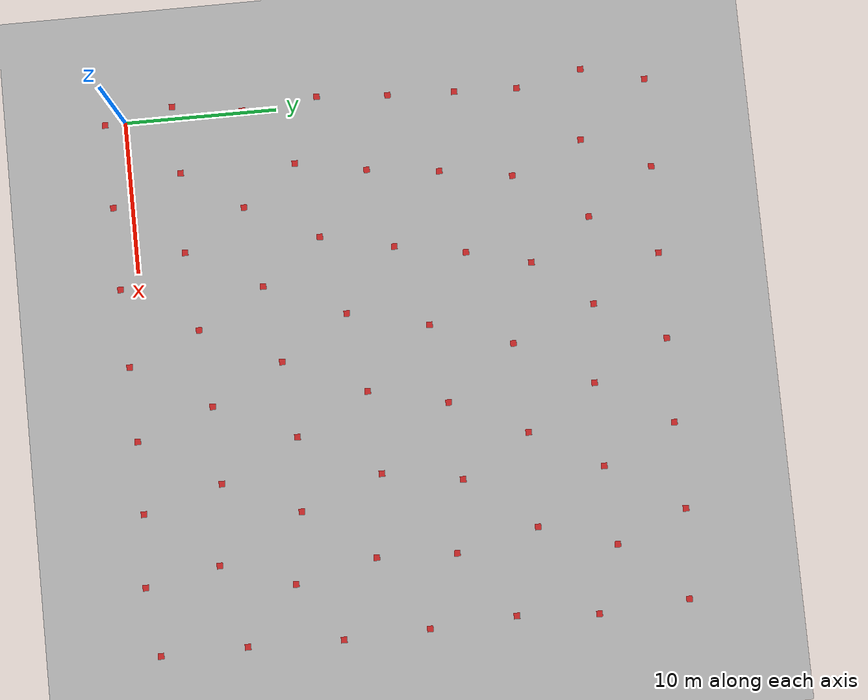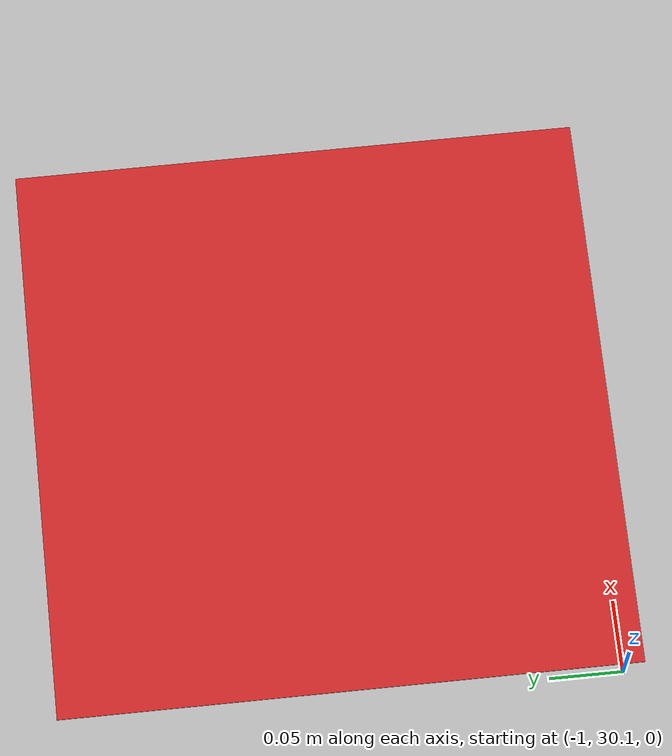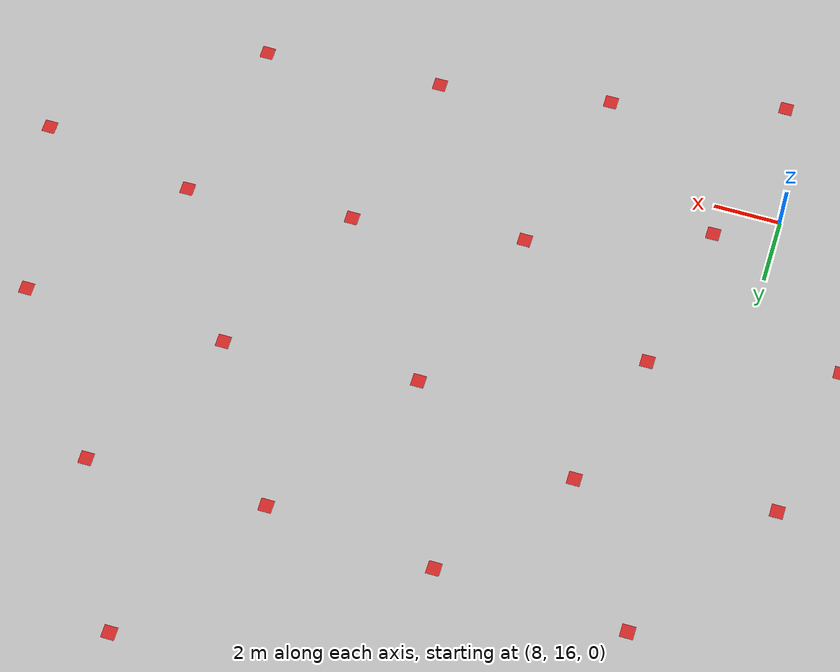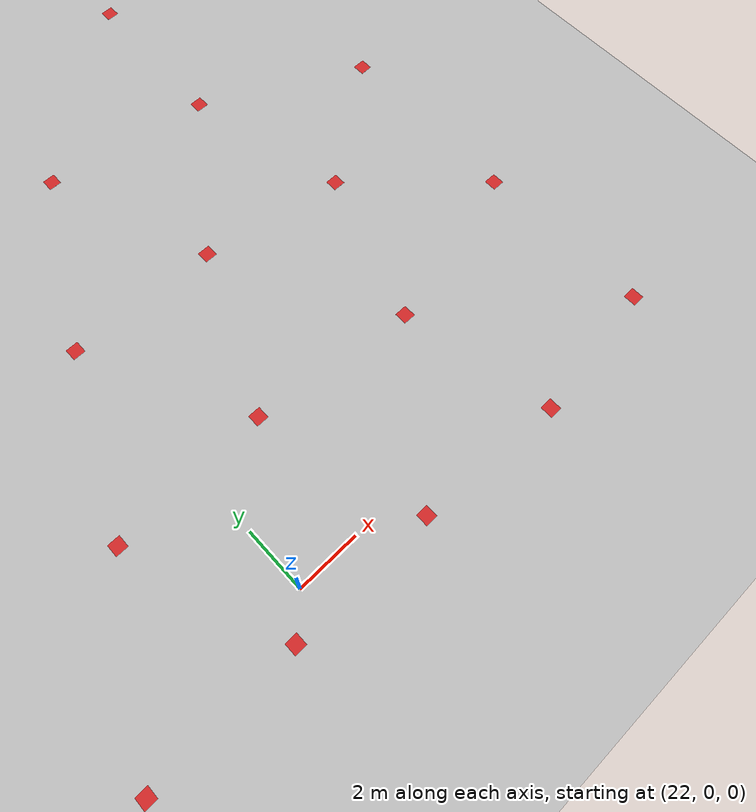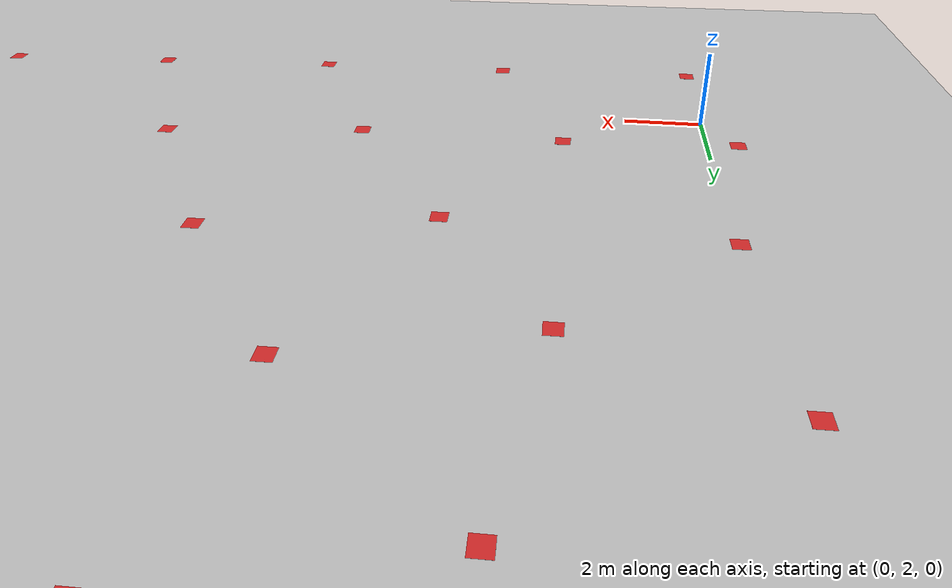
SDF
<sdf version="1.7">
 <world name="default">
  <light name="sun" type="directional">
   <pose>0 0 10 0 -0 0</pose>
   <diffuse>0.8 0.8 0.8 1</diffuse>
   <specular>0.2 0.2 0.2 1</specular>
   <attenuation>
    <range>1000</range>
    <constant>0.9</constant>
    <linear>0.01</linear>
    <quadratic>0.001</quadratic>
   </attenuation>
   <direction>-0.5 0.1 -0.9</direction>
   <spot><inner_angle>0</inner_angle><outer_angle>0</outer_angle><falloff>0</falloff></spot>
  </light>
  <model name="parquet_plane">
   <static>1</static>
   <link name="link">
    <collision name="collision"><geometry><box><size>200 200 0.02</size></box></geometry></collision>
    <visual name="visual">
     <cast_shadows>0</cast_shadows>
     <geometry><box><size>200 200 0.02</size></box></geometry>
     <material>
      <script>
       <uri>model://parquet_plane/materials/scripts</uri>
       <uri>model://parquet_plane/materials/textures</uri>
       <name>parquet</name>
      </script>
     </material>
    </visual>
   </link>
   <pose>0 0 -0.01 0 -0 0</pose>
  </model>
  <model name="camera">
   <static>1</static>
   <link name="camera_link">
    <sensor name="camera" type="camera">
     <camera>
      <horizontal_fov>1.8</horizontal_fov>
      <image><format>B8G8R8</format><width>640</width><height>480</height></image>
      <clip><near>0.02</near><far>300</far></clip>
     </camera>
     <always_on>1</always_on>
     <update_rate>30</update_rate>
     <visualize>1</visualize>
     <plugin name="camera_plugin" filename="libgazebo_ros_camera.so">
      <alwaysOn>1</alwaysOn>
      <imageTopicName>image_raw</imageTopicName>
      <cameraTopicName>camera_info</cameraTopicName>
      <cameraName>camera</cameraName>
      <frameName>/camera</frameName>
     </plugin>
    </sensor>
   </link>
   <pose>-1.12869 1.04423 3 0 0.550001 0.35</pose>
  </model>
  <scene>
   <ambient>0.8 0.8 0.8 1</ambient>
   <background>0.8 0.9 1 1</background>
   <shadows>0</shadows>
   <grid>0</grid>
   <origin_visual>0</origin_visual>
  </scene>
  <physics name="default_physics" default="0" type="ode">
   <max_step_size>0.001</max_step_size>
   <real_time_factor>1</real_time_factor>
   <real_time_update_rate>1000</real_time_update_rate>
  </physics>
  <gravity>0 0 -9.8</gravity>
  <magnetic_field>6e-06 2.3e-05 -4.2e-05</magnetic_field>
  <atmosphere type="adiabatic"/>
  <spherical_coordinates>
   <surface_model>EARTH_WGS84</surface_model>
   <latitude_deg>0</latitude_deg>
   <longitude_deg>0</longitude_deg>
   <elevation>0</elevation>
   <heading_deg>0</heading_deg>
  </spherical_coordinates>
  <model name="red_circle_clone_0">
   <pose>17.5068 34.091 0 0 -0 0</pose>
   <frame name="red_circle::__model__" attached_to="red_circle::red_circle_link">
    <pose relative_to="__model__">0 0 0 0 -0 0</pose>
   </frame>
   <static>1</static>
   <link name="red_circle::red_circle_link">
    <pose relative_to="red_circle::__model__">0 0 0.001 0 -0 0</pose>
    <visual name="red_circle_texture">
     <cast_shadows>0</cast_shadows>
     <geometry><box><size>0.4 0.4 0.001</size></box></geometry>
     <material>
      <script>
       <uri>model://red_circle/materials/scripts</uri>
       <uri>model://red_circle/materials/textures</uri>
       <name>red_circle</name>
      </script>
     </material>
    </visual>
   </link>
  </model>
  <model name="red_circle_clone_1">
   <pose>6.10911 34.2733 0 0 -0 0</pose>
   <frame name="red_circle::__model__" attached_to="red_circle::red_circle_link">
    <pose relative_to="__model__">0 0 0 0 -0 0</pose>
   </frame>
   <static>1</static>
   <link name="red_circle::red_circle_link">
    <pose relative_to="red_circle::__model__">0 0 0.001 0 -0 0</pose>
    <visual name="red_circle_texture">
     <cast_shadows>0</cast_shadows>
     <geometry><box><size>0.4 0.4 0.001</size></box></geometry>
     <material>
      <script>
       <uri>model://red_circle/materials/scripts</uri>
       <uri>model://red_circle/materials/textures</uri>
       <name>red_circle</name>
      </script>
     </material>
    </visual>
   </link>
  </model>
  <model name="red_circle_clone_2">
   <pose>0.254034 34.4378 0 0 -0 0</pose>
   <frame name="red_circle::__model__" attached_to="red_circle::red_circle_link">
    <pose relative_to="__model__">0 0 0 0 -0 0</pose>
   </frame>
   <static>1</static>
   <link name="red_circle::red_circle_link">
    <pose relative_to="red_circle::__model__">0 0 0.001 0 -0 0</pose>
    <visual name="red_circle_texture">
     <cast_shadows>0</cast_shadows>
     <geometry><box><size>0.4 0.4 0.001</size></box></geometry>
     <material>
      <script>
       <uri>model://red_circle/materials/scripts</uri>
       <uri>model://red_circle/materials/textures</uri>
       <name>red_circle</name>
      </script>
     </material>
    </visual>
   </link>
  </model>
  <model name="red_circle_clone_3">
   <pose>11.8633 34.1481 0 0 -0 0</pose>
   <frame name="red_circle::__model__" attached_to="red_circle::red_circle_link">
    <pose relative_to="__model__">0 0 0 0 -0 0</pose>
   </frame>
   <static>1</static>
   <link name="red_circle::red_circle_link">
    <pose relative_to="red_circle::__model__">0 0 0.001 0 -0 0</pose>
    <visual name="red_circle_texture">
     <cast_shadows>0</cast_shadows>
     <geometry><box><size>0.4 0.4 0.001</size></box></geometry>
     <material>
      <script>
       <uri>model://red_circle/materials/scripts</uri>
       <uri>model://red_circle/materials/textures</uri>
       <name>red_circle</name>
      </script>
     </material>
    </visual>
   </link>
  </model>
  <model name="red_circle_clone_4">
   <pose>-0.794647 30.2841 0 0 -0 0</pose>
   <frame name="red_circle::__model__" attached_to="red_circle::red_circle_link">
    <pose relative_to="__model__">0 0 0 0 -0 0</pose>
   </frame>
   <static>1</static>
   <link name="red_circle::red_circle_link">
    <pose relative_to="red_circle::__model__">0 0 0.001 0 -0 0</pose>
    <visual name="red_circle_texture">
     <cast_shadows>0</cast_shadows>
     <geometry><box><size>0.4 0.4 0.001</size></box></geometry>
     <material>
      <script>
       <uri>model://red_circle/materials/scripts</uri>
       <uri>model://red_circle/materials/textures</uri>
       <name>red_circle</name>
      </script>
     </material>
    </visual>
   </link>
  </model>
  <model name="red_circle_clone_5">
   <pose>14.8146 29.5563 0 0 -0 0</pose>
   <frame name="red_circle::__model__" attached_to="red_circle::red_circle_link">
    <pose relative_to="__model__">0 0 0 0 -0 0</pose>
   </frame>
   <static>1</static>
   <link name="red_circle::red_circle_link">
    <pose relative_to="red_circle::__model__">0 0 0.001 0 -0 0</pose>
    <visual name="red_circle_texture">
     <cast_shadows>0</cast_shadows>
     <geometry><box><size>0.4 0.4 0.001</size></box></geometry>
     <material>
      <script>
       <uri>model://red_circle/materials/scripts</uri>
       <uri>model://red_circle/materials/textures</uri>
       <name>red_circle</name>
      </script>
     </material>
    </visual>
   </link>
  </model>
  <model name="red_circle_clone_6">
   <pose>9.04766 29.8293 0 0 -0 0</pose>
   <frame name="red_circle::__model__" attached_to="red_circle::red_circle_link">
    <pose relative_to="__model__">0 0 0 0 -0 0</pose>
   </frame>
   <static>1</static>
   <link name="red_circle::red_circle_link">
    <pose relative_to="red_circle::__model__">0 0 0.001 0 -0 0</pose>
    <visual name="red_circle_texture">
     <cast_shadows>0</cast_shadows>
     <geometry><box><size>0.4 0.4 0.001</size></box></geometry>
     <material>
      <script>
       <uri>model://red_circle/materials/scripts</uri>
       <uri>model://red_circle/materials/textures</uri>
       <name>red_circle</name>
      </script>
     </material>
    </visual>
   </link>
  </model>
  <model name="red_circle_clone_7">
   <pose>3.90864 29.8195 0 0 -0 0</pose>
   <frame name="red_circle::__model__" attached_to="red_circle::red_circle_link">
    <pose relative_to="__model__">0 0 0 0 -0 0</pose>
   </frame>
   <static>1</static>
   <link name="red_circle::red_circle_link">
    <pose relative_to="red_circle::__model__">0 0 0.001 0 -0 0</pose>
    <visual name="red_circle_texture">
     <cast_shadows>0</cast_shadows>
     <geometry><box><size>0.4 0.4 0.001</size></box></geometry>
     <material>
      <script>
       <uri>model://red_circle/materials/scripts</uri>
       <uri>model://red_circle/materials/textures</uri>
       <name>red_circle</name>
      </script>
     </material>
    </visual>
   </link>
  </model>
  <model name="red_circle_clone_8">
   <pose>23.0227 33.9925 0 0 -0 0</pose>
   <frame name="red_circle::__model__" attached_to="red_circle::red_circle_link">
    <pose relative_to="__model__">0 0 0 0 -0 0</pose>
   </frame>
   <static>1</static>
   <link name="red_circle::red_circle_link">
    <pose relative_to="red_circle::__model__">0 0 0.001 0 -0 0</pose>
    <visual name="red_circle_texture">
     <cast_shadows>0</cast_shadows>
     <geometry><box><size>0.4 0.4 0.001</size></box></geometry>
     <material>
      <script>
       <uri>model://red_circle/materials/scripts</uri>
       <uri>model://red_circle/materials/textures</uri>
       <name>red_circle</name>
      </script>
     </material>
    </visual>
   </link>
  </model>
  <model name="red_circle_clone_9">
   <pose>11.715 25.7654 0 0 -0 0</pose>
   <frame name="red_circle::__model__" attached_to="red_circle::red_circle_link">
    <pose relative_to="__model__">0 0 0 0 -0 0</pose>
   </frame>
   <static>1</static>
   <link name="red_circle::red_circle_link">
    <pose relative_to="red_circle::__model__">0 0 0.001 0 -0 0</pose>
    <visual name="red_circle_texture">
     <cast_shadows>0</cast_shadows>
     <geometry><box><size>0.4 0.4 0.001</size></box></geometry>
     <material>
      <script>
       <uri>model://red_circle/materials/scripts</uri>
       <uri>model://red_circle/materials/textures</uri>
       <name>red_circle</name>
      </script>
     </material>
    </visual>
   </link>
  </model>
  <model name="red_circle_clone_10">
   <pose>0.068266 25.9548 0 0 -0 0</pose>
   <frame name="red_circle::__model__" attached_to="red_circle::red_circle_link">
    <pose relative_to="__model__">0 0 0 0 -0 0</pose>
   </frame>
   <static>1</static>
   <link name="red_circle::red_circle_link">
    <pose relative_to="red_circle::__model__">0 0 0.001 0 -0 0</pose>
    <visual name="red_circle_texture">
     <cast_shadows>0</cast_shadows>
     <geometry><box><size>0.4 0.4 0.001</size></box></geometry>
     <material>
      <script>
       <uri>model://red_circle/materials/scripts</uri>
       <uri>model://red_circle/materials/textures</uri>
       <name>red_circle</name>
      </script>
     </material>
    </visual>
   </link>
  </model>
  <model name="red_circle_clone_11">
   <pose>19.9748 29.0812 0 0 -0 0</pose>
   <frame name="red_circle::__model__" attached_to="red_circle::red_circle_link">
    <pose relative_to="__model__">0 0 0 0 -0 0</pose>
   </frame>
   <static>1</static>
   <link name="red_circle::red_circle_link">
    <pose relative_to="red_circle::__model__">0 0 0.001 0 -0 0</pose>
    <visual name="red_circle_texture">
     <cast_shadows>0</cast_shadows>
     <geometry><box><size>0.4 0.4 0.001</size></box></geometry>
     <material>
      <script>
       <uri>model://red_circle/materials/scripts</uri>
       <uri>model://red_circle/materials/textures</uri>
       <name>red_circle</name>
      </script>
     </material>
    </visual>
   </link>
  </model>
  <model name="red_circle_clone_12">
   <pose>5.87012 25.0935 0 0 -0 0</pose>
   <frame name="red_circle::__model__" attached_to="red_circle::red_circle_link">
    <pose relative_to="__model__">0 0 0 0 -0 0</pose>
   </frame>
   <static>1</static>
   <link name="red_circle::red_circle_link">
    <pose relative_to="red_circle::__model__">0 0 0.001 0 -0 0</pose>
    <visual name="red_circle_texture">
     <cast_shadows>0</cast_shadows>
     <geometry><box><size>0.4 0.4 0.001</size></box></geometry>
     <material>
      <script>
       <uri>model://red_circle/materials/scripts</uri>
       <uri>model://red_circle/materials/textures</uri>
       <name>red_circle</name>
      </script>
     </material>
    </visual>
   </link>
  </model>
  <model name="red_circle_clone_13">
   <pose>25.4199 29.152 0 0 -0 0</pose>
   <frame name="red_circle::__model__" attached_to="red_circle::red_circle_link">
    <pose relative_to="__model__">0 0 0 0 -0 0</pose>
   </frame>
   <static>1</static>
   <link name="red_circle::red_circle_link">
    <pose relative_to="red_circle::__model__">0 0 0.001 0 -0 0</pose>
    <visual name="red_circle_texture">
     <cast_shadows>0</cast_shadows>
     <geometry><box><size>0.4 0.4 0.001</size></box></geometry>
     <material>
      <script>
       <uri>model://red_circle/materials/scripts</uri>
       <uri>model://red_circle/materials/textures</uri>
       <name>red_circle</name>
      </script>
     </material>
    </visual>
   </link>
  </model>
  <model name="red_circle_clone_14">
   <pose>-0.08842 21.8155 0 0 -0 0</pose>
   <frame name="red_circle::__model__" attached_to="red_circle::red_circle_link">
    <pose relative_to="__model__">0 0 0 0 -0 0</pose>
   </frame>
   <static>1</static>
   <link name="red_circle::red_circle_link">
    <pose relative_to="red_circle::__model__">0 0 0.001 0 -0 0</pose>
    <visual name="red_circle_texture">
     <cast_shadows>0</cast_shadows>
     <geometry><box><size>0.4 0.4 0.001</size></box></geometry>
     <material>
      <script>
       <uri>model://red_circle/materials/scripts</uri>
       <uri>model://red_circle/materials/textures</uri>
       <name>red_circle</name>
      </script>
     </material>
    </visual>
   </link>
  </model>
  <model name="red_circle_clone_15">
   <pose>16.911 24.0639 0 0 -0 0</pose>
   <frame name="red_circle::__model__" attached_to="red_circle::red_circle_link">
    <pose relative_to="__model__">0 0 0 0 -0 0</pose>
   </frame>
   <static>1</static>
   <link name="red_circle::red_circle_link">
    <pose relative_to="red_circle::__model__">0 0 0.001 0 -0 0</pose>
    <visual name="red_circle_texture">
     <cast_shadows>0</cast_shadows>
     <geometry><box><size>0.4 0.4 0.001</size></box></geometry>
     <material>
      <script>
       <uri>model://red_circle/materials/scripts</uri>
       <uri>model://red_circle/materials/textures</uri>
       <name>red_circle</name>
      </script>
     </material>
    </visual>
   </link>
  </model>
  <model name="red_circle_clone_16">
   <pose>-0.259465 17.4056 0 0 -0 0</pose>
   <frame name="red_circle::__model__" attached_to="red_circle::red_circle_link">
    <pose relative_to="__model__">0 0 0 0 -0 0</pose>
   </frame>
   <static>1</static>
   <link name="red_circle::red_circle_link">
    <pose relative_to="red_circle::__model__">0 0 0.001 0 -0 0</pose>
    <visual name="red_circle_texture">
     <cast_shadows>0</cast_shadows>
     <geometry><box><size>0.4 0.4 0.001</size></box></geometry>
     <material>
      <script>
       <uri>model://red_circle/materials/scripts</uri>
       <uri>model://red_circle/materials/textures</uri>
       <name>red_circle</name>
      </script>
     </material>
    </visual>
   </link>
  </model>
  <model name="red_circle_clone_17">
   <pose>10.6433 21.5556 0 0 -0 0</pose>
   <frame name="red_circle::__model__" attached_to="red_circle::red_circle_link">
    <pose relative_to="__model__">0 0 0 0 -0 0</pose>
   </frame>
   <static>1</static>
   <link name="red_circle::red_circle_link">
    <pose relative_to="red_circle::__model__">0 0 0.001 0 -0 0</pose>
    <visual name="red_circle_texture">
     <cast_shadows>0</cast_shadows>
     <geometry><box><size>0.4 0.4 0.001</size></box></geometry>
     <material>
      <script>
       <uri>model://red_circle/materials/scripts</uri>
       <uri>model://red_circle/materials/textures</uri>
       <name>red_circle</name>
      </script>
     </material>
    </visual>
   </link>
  </model>
  <model name="red_circle_clone_18">
   <pose>20.3645 19.4703 0 0 -0 0</pose>
   <frame name="red_circle::__model__" attached_to="red_circle::red_circle_link">
    <pose relative_to="__model__">0 0 0 0 -0 0</pose>
   </frame>
   <static>1</static>
   <link name="red_circle::red_circle_link">
    <pose relative_to="red_circle::__model__">0 0 0.001 0 -0 0</pose>
    <visual name="red_circle_texture">
     <cast_shadows>0</cast_shadows>
     <geometry><box><size>0.4 0.4 0.001</size></box></geometry>
     <material>
      <script>
       <uri>model://red_circle/materials/scripts</uri>
       <uri>model://red_circle/materials/textures</uri>
       <name>red_circle</name>
      </script>
     </material>
    </visual>
   </link>
  </model>
  <model name="red_circle_clone_19">
   <pose>22.7881 24.4753 0 0 -0 0</pose>
   <frame name="red_circle::__model__" attached_to="red_circle::red_circle_link">
    <pose relative_to="__model__">0 0 0 0 -0 0</pose>
   </frame>
   <static>1</static>
   <link name="red_circle::red_circle_link">
    <pose relative_to="red_circle::__model__">0 0 0.001 0 -0 0</pose>
    <visual name="red_circle_texture">
     <cast_shadows>0</cast_shadows>
     <geometry><box><size>0.4 0.4 0.001</size></box></geometry>
     <material>
      <script>
       <uri>model://red_circle/materials/scripts</uri>
       <uri>model://red_circle/materials/textures</uri>
       <name>red_circle</name>
      </script>
     </material>
    </visual>
   </link>
  </model>
  <model name="red_circle_clone_20">
   <pose>-0.60008 12.7248 0 0 -0 0</pose>
   <frame name="red_circle::__model__" attached_to="red_circle::red_circle_link">
    <pose relative_to="__model__">0 0 0 0 -0 0</pose>
   </frame>
   <static>1</static>
   <link name="red_circle::red_circle_link">
    <pose relative_to="red_circle::__model__">0 0 0.001 0 -0 0</pose>
    <visual name="red_circle_texture">
     <cast_shadows>0</cast_shadows>
     <geometry><box><size>0.4 0.4 0.001</size></box></geometry>
     <material>
      <script>
       <uri>model://red_circle/materials/scripts</uri>
       <uri>model://red_circle/materials/textures</uri>
       <name>red_circle</name>
      </script>
     </material>
    </visual>
   </link>
  </model>
  <model name="red_circle_clone_21">
   <pose>5.11351 20.3278 0 0 -0 0</pose>
   <frame name="red_circle::__model__" attached_to="red_circle::red_circle_link">
    <pose relative_to="__model__">0 0 0 0 -0 0</pose>
   </frame>
   <static>1</static>
   <link name="red_circle::red_circle_link">
    <pose relative_to="red_circle::__model__">0 0 0.001 0 -0 0</pose>
    <visual name="red_circle_texture">
     <cast_shadows>0</cast_shadows>
     <geometry><box><size>0.4 0.4 0.001</size></box></geometry>
     <material>
      <script>
       <uri>model://red_circle/materials/scripts</uri>
       <uri>model://red_circle/materials/textures</uri>
       <name>red_circle</name>
      </script>
     </material>
    </visual>
   </link>
  </model>
  <model name="red_circle_clone_22">
   <pose>9.82019 16.9059 0 0 -0 0</pose>
   <frame name="red_circle::__model__" attached_to="red_circle::red_circle_link">
    <pose relative_to="__model__">0 0 0 0 -0 0</pose>
   </frame>
   <static>1</static>
   <link name="red_circle::red_circle_link">
    <pose relative_to="red_circle::__model__">0 0 0.001 0 -0 0</pose>
    <visual name="red_circle_texture">
     <cast_shadows>0</cast_shadows>
     <geometry><box><size>0.4 0.4 0.001</size></box></geometry>
     <material>
      <script>
       <uri>model://red_circle/materials/scripts</uri>
       <uri>model://red_circle/materials/textures</uri>
       <name>red_circle</name>
      </script>
     </material>
    </visual>
   </link>
  </model>
  <model name="red_circle_clone_23">
   <pose>4.58028 15.5671 0 0 -0 0</pose>
   <frame name="red_circle::__model__" attached_to="red_circle::red_circle_link">
    <pose relative_to="__model__">0 0 0 0 -0 0</pose>
   </frame>
   <static>1</static>
   <link name="red_circle::red_circle_link">
    <pose relative_to="red_circle::__model__">0 0 0.001 0 -0 0</pose>
    <visual name="red_circle_texture">
     <cast_shadows>0</cast_shadows>
     <geometry><box><size>0.4 0.4 0.001</size></box></geometry>
     <material>
      <script>
       <uri>model://red_circle/materials/scripts</uri>
       <uri>model://red_circle/materials/textures</uri>
       <name>red_circle</name>
      </script>
     </material>
    </visual>
   </link>
  </model>
  <model name="red_circle_clone_24">
   <pose>3.71745 10.8931 0 0 -0 0</pose>
   <frame name="red_circle::__model__" attached_to="red_circle::red_circle_link">
    <pose relative_to="__model__">0 0 0 0 -0 0</pose>
   </frame>
   <static>1</static>
   <link name="red_circle::red_circle_link">
    <pose relative_to="red_circle::__model__">0 0 0.001 0 -0 0</pose>
    <visual name="red_circle_texture">
     <cast_shadows>0</cast_shadows>
     <geometry><box><size>0.4 0.4 0.001</size></box></geometry>
     <material>
      <script>
       <uri>model://red_circle/materials/scripts</uri>
       <uri>model://red_circle/materials/textures</uri>
       <name>red_circle</name>
      </script>
     </material>
    </visual>
   </link>
  </model>
  <model name="red_circle_clone_25">
   <pose>28.9476 24.4722 0 0 -0 0</pose>
   <frame name="red_circle::__model__" attached_to="red_circle::red_circle_link">
    <pose relative_to="__model__">0 0 0 0 -0 0</pose>
   </frame>
   <static>1</static>
   <link name="red_circle::red_circle_link">
    <pose relative_to="red_circle::__model__">0 0 0.001 0 -0 0</pose>
    <visual name="red_circle_texture">
     <cast_shadows>0</cast_shadows>
     <geometry><box><size>0.4 0.4 0.001</size></box></geometry>
     <material>
      <script>
       <uri>model://red_circle/materials/scripts</uri>
       <uri>model://red_circle/materials/textures</uri>
       <name>red_circle</name>
      </script>
     </material>
    </visual>
   </link>
  </model>
  <model name="red_circle_clone_26">
   <pose>15.1813 18.7163 0 0 -0 0</pose>
   <frame name="red_circle::__model__" attached_to="red_circle::red_circle_link">
    <pose relative_to="__model__">0 0 0 0 -0 0</pose>
   </frame>
   <static>1</static>
   <link name="red_circle::red_circle_link">
    <pose relative_to="red_circle::__model__">0 0 0.001 0 -0 0</pose>
    <visual name="red_circle_texture">
     <cast_shadows>0</cast_shadows>
     <geometry><box><size>0.4 0.4 0.001</size></box></geometry>
     <material>
      <script>
       <uri>model://red_circle/materials/scripts</uri>
       <uri>model://red_circle/materials/textures</uri>
       <name>red_circle</name>
      </script>
     </material>
    </visual>
   </link>
  </model>
  <model name="red_circle_clone_27">
   <pose>6.32116 7.30029 0 0 -0 0</pose>
   <frame name="red_circle::__model__" attached_to="red_circle::red_circle_link">
    <pose relative_to="__model__">0 0 0 0 -0 0</pose>
   </frame>
   <static>1</static>
   <link name="red_circle::red_circle_link">
    <pose relative_to="red_circle::__model__">0 0 0.001 0 -0 0</pose>
    <visual name="red_circle_texture">
     <cast_shadows>0</cast_shadows>
     <geometry><box><size>0.4 0.4 0.001</size></box></geometry>
     <material>
      <script>
       <uri>model://red_circle/materials/scripts</uri>
       <uri>model://red_circle/materials/textures</uri>
       <name>red_circle</name>
      </script>
     </material>
    </visual>
   </link>
  </model>
  <model name="red_circle_clone_28">
   <pose>-0.128468 7.74403 0 0 -0 0</pose>
   <frame name="red_circle::__model__" attached_to="red_circle::red_circle_link">
    <pose relative_to="__model__">0 0 0 0 -0 0</pose>
   </frame>
   <static>1</static>
   <link name="red_circle::red_circle_link">
    <pose relative_to="red_circle::__model__">0 0 0.001 0 -0 0</pose>
    <visual name="red_circle_texture">
     <cast_shadows>0</cast_shadows>
     <geometry><box><size>0.4 0.4 0.001</size></box></geometry>
     <material>
      <script>
       <uri>model://red_circle/materials/scripts</uri>
       <uri>model://red_circle/materials/textures</uri>
       <name>red_circle</name>
      </script>
     </material>
    </visual>
   </link>
  </model>
  <model name="red_circle_clone_29">
   <pose>25.4273 19.9262 0 0 -0 0</pose>
   <frame name="red_circle::__model__" attached_to="red_circle::red_circle_link">
    <pose relative_to="__model__">0 0 0 0 -0 0</pose>
   </frame>
   <static>1</static>
   <link name="red_circle::red_circle_link">
    <pose relative_to="red_circle::__model__">0 0 0.001 0 -0 0</pose>
    <visual name="red_circle_texture">
     <cast_shadows>0</cast_shadows>
     <geometry><box><size>0.4 0.4 0.001</size></box></geometry>
     <material>
      <script>
       <uri>model://red_circle/materials/scripts</uri>
       <uri>model://red_circle/materials/textures</uri>
       <name>red_circle</name>
      </script>
     </material>
    </visual>
   </link>
  </model>
  <model name="red_circle_clone_30">
   <pose>8.73035 12.0906 0 0 -0 0</pose>
   <frame name="red_circle::__model__" attached_to="red_circle::red_circle_link">
    <pose relative_to="__model__">0 0 0 0 -0 0</pose>
   </frame>
   <static>1</static>
   <link name="red_circle::red_circle_link">
    <pose relative_to="red_circle::__model__">0 0 0.001 0 -0 0</pose>
    <visual name="red_circle_texture">
     <cast_shadows>0</cast_shadows>
     <geometry><box><size>0.4 0.4 0.001</size></box></geometry>
     <material>
      <script>
       <uri>model://red_circle/materials/scripts</uri>
       <uri>model://red_circle/materials/textures</uri>
       <name>red_circle</name>
      </script>
     </material>
    </visual>
   </link>
  </model>
  <model name="red_circle_clone_31">
   <pose>-0.813295 3.15226 0 0 -0 0</pose>
   <frame name="red_circle::__model__" attached_to="red_circle::red_circle_link">
    <pose relative_to="__model__">0 0 0 0 -0 0</pose>
   </frame>
   <static>1</static>
   <link name="red_circle::red_circle_link">
    <pose relative_to="red_circle::__model__">0 0 0.001 0 -0 0</pose>
    <visual name="red_circle_texture">
     <cast_shadows>0</cast_shadows>
     <geometry><box><size>0.4 0.4 0.001</size></box></geometry>
     <material>
      <script>
       <uri>model://red_circle/materials/scripts</uri>
       <uri>model://red_circle/materials/textures</uri>
       <name>red_circle</name>
      </script>
     </material>
    </visual>
   </link>
  </model>
  <model name="red_circle_clone_32">
   <pose>13.9347 13.3896 0 0 -0 0</pose>
   <frame name="red_circle::__model__" attached_to="red_circle::red_circle_link">
    <pose relative_to="__model__">0 0 0 0 -0 0</pose>
   </frame>
   <static>1</static>
   <link name="red_circle::red_circle_link">
    <pose relative_to="red_circle::__model__">0 0 0.001 0 -0 0</pose>
    <visual name="red_circle_texture">
     <cast_shadows>0</cast_shadows>
     <geometry><box><size>0.4 0.4 0.001</size></box></geometry>
     <material>
      <script>
       <uri>model://red_circle/materials/scripts</uri>
       <uri>model://red_circle/materials/textures</uri>
       <name>red_circle</name>
      </script>
     </material>
    </visual>
   </link>
  </model>
  <model name="red_circle_clone_33">
   <pose>3.65217 3.33807 0 0 -0 0</pose>
   <frame name="red_circle::__model__" attached_to="red_circle::red_circle_link">
    <pose relative_to="__model__">0 0 0 0 -0 0</pose>
   </frame>
   <static>1</static>
   <link name="red_circle::red_circle_link">
    <pose relative_to="red_circle::__model__">0 0 0.001 0 -0 0</pose>
    <visual name="red_circle_texture">
     <cast_shadows>0</cast_shadows>
     <geometry><box><size>0.4 0.4 0.001</size></box></geometry>
     <material>
      <script>
       <uri>model://red_circle/materials/scripts</uri>
       <uri>model://red_circle/materials/textures</uri>
       <name>red_circle</name>
      </script>
     </material>
    </visual>
   </link>
  </model>
  <model name="red_circle_clone_34">
   <pose>11.6441 8.10017 0 0 -0 0</pose>
   <frame name="red_circle::__model__" attached_to="red_circle::red_circle_link">
    <pose relative_to="__model__">0 0 0 0 -0 0</pose>
   </frame>
   <static>1</static>
   <link name="red_circle::red_circle_link">
    <pose relative_to="red_circle::__model__">0 0 0.001 0 -0 0</pose>
    <visual name="red_circle_texture">
     <cast_shadows>0</cast_shadows>
     <geometry><box><size>0.4 0.4 0.001</size></box></geometry>
     <material>
      <script>
       <uri>model://red_circle/materials/scripts</uri>
       <uri>model://red_circle/materials/textures</uri>
       <name>red_circle</name>
      </script>
     </material>
    </visual>
   </link>
  </model>
  <model name="red_circle_clone_35">
   <pose>19.1384 14.2838 0 0 -0 0</pose>
   <frame name="red_circle::__model__" attached_to="red_circle::red_circle_link">
    <pose relative_to="__model__">0 0 0 0 -0 0</pose>
   </frame>
   <static>1</static>
   <link name="red_circle::red_circle_link">
    <pose relative_to="red_circle::__model__">0 0 0.001 0 -0 0</pose>
    <visual name="red_circle_texture">
     <cast_shadows>0</cast_shadows>
     <geometry><box><size>0.4 0.4 0.001</size></box></geometry>
     <material>
      <script>
       <uri>model://red_circle/materials/scripts</uri>
       <uri>model://red_circle/materials/textures</uri>
       <name>red_circle</name>
      </script>
     </material>
    </visual>
   </link>
  </model>
  <model name="red_circle_clone_36">
   <pose>16.7057 8.90293 0 0 -0 0</pose>
   <frame name="red_circle::__model__" attached_to="red_circle::red_circle_link">
    <pose relative_to="__model__">0 0 0 0 -0 0</pose>
   </frame>
   <static>1</static>
   <link name="red_circle::red_circle_link">
    <pose relative_to="red_circle::__model__">0 0 0.001 0 -0 0</pose>
    <visual name="red_circle_texture">
     <cast_shadows>0</cast_shadows>
     <geometry><box><size>0.4 0.4 0.001</size></box></geometry>
     <material>
      <script>
       <uri>model://red_circle/materials/scripts</uri>
       <uri>model://red_circle/materials/textures</uri>
       <name>red_circle</name>
      </script>
     </material>
    </visual>
   </link>
  </model>
  <model name="red_circle_clone_37">
   <pose>8.9461 3.19093 0 0 -0 0</pose>
   <frame name="red_circle::__model__" attached_to="red_circle::red_circle_link">
    <pose relative_to="__model__">0 0 0 0 -0 0</pose>
   </frame>
   <static>1</static>
   <link name="red_circle::red_circle_link">
    <pose relative_to="red_circle::__model__">0 0 0.001 0 -0 0</pose>
    <visual name="red_circle_texture">
     <cast_shadows>0</cast_shadows>
     <geometry><box><size>0.4 0.4 0.001</size></box></geometry>
     <material>
      <script>
       <uri>model://red_circle/materials/scripts</uri>
       <uri>model://red_circle/materials/textures</uri>
       <name>red_circle</name>
      </script>
     </material>
    </visual>
   </link>
  </model>
  <model name="red_circle_clone_38">
   <pose>10.9899 -1.23314 0 0 -0 0</pose>
   <frame name="red_circle::__model__" attached_to="red_circle::red_circle_link">
    <pose relative_to="__model__">0 0 0 0 -0 0</pose>
   </frame>
   <static>1</static>
   <link name="red_circle::red_circle_link">
    <pose relative_to="red_circle::__model__">0 0 0.001 0 -0 0</pose>
    <visual name="red_circle_texture">
     <cast_shadows>0</cast_shadows>
     <geometry><box><size>0.4 0.4 0.001</size></box></geometry>
     <material>
      <script>
       <uri>model://red_circle/materials/scripts</uri>
       <uri>model://red_circle/materials/textures</uri>
       <name>red_circle</name>
      </script>
     </material>
    </visual>
   </link>
  </model>
  <model name="red_circle_clone_39">
   <pose>0.002895 -1.34865 0 0 -0 0</pose>
   <frame name="red_circle::__model__" attached_to="red_circle::red_circle_link">
    <pose relative_to="__model__">0 0 0 0 -0 0</pose>
   </frame>
   <static>1</static>
   <link name="red_circle::red_circle_link">
    <pose relative_to="red_circle::__model__">0 0 0.001 0 -0 0</pose>
    <visual name="red_circle_texture">
     <cast_shadows>0</cast_shadows>
     <geometry><box><size>0.4 0.4 0.001</size></box></geometry>
     <material>
      <script>
       <uri>model://red_circle/materials/scripts</uri>
       <uri>model://red_circle/materials/textures</uri>
       <name>red_circle</name>
      </script>
     </material>
    </visual>
   </link>
  </model>
  <model name="red_circle_clone_40">
   <pose>16.1294 -1.05556 0 0 -0 0</pose>
   <frame name="red_circle::__model__" attached_to="red_circle::red_circle_link">
    <pose relative_to="__model__">0 0 0 0 -0 0</pose>
   </frame>
   <static>1</static>
   <link name="red_circle::red_circle_link">
    <pose relative_to="red_circle::__model__">0 0 0.001 0 -0 0</pose>
    <visual name="red_circle_texture">
     <cast_shadows>0</cast_shadows>
     <geometry><box><size>0.4 0.4 0.001</size></box></geometry>
     <material>
      <script>
       <uri>model://red_circle/materials/scripts</uri>
       <uri>model://red_circle/materials/textures</uri>
       <name>red_circle</name>
      </script>
     </material>
    </visual>
   </link>
  </model>
  <model name="red_circle_clone_41">
   <pose>5.55037 -1.25673 0 0 -0 0</pose>
   <frame name="red_circle::__model__" attached_to="red_circle::red_circle_link">
    <pose relative_to="__model__">0 0 0 0 -0 0</pose>
   </frame>
   <static>1</static>
   <link name="red_circle::red_circle_link">
    <pose relative_to="red_circle::__model__">0 0 0.001 0 -0 0</pose>
    <visual name="red_circle_texture">
     <cast_shadows>0</cast_shadows>
     <geometry><box><size>0.4 0.4 0.001</size></box></geometry>
     <material>
      <script>
       <uri>model://red_circle/materials/scripts</uri>
       <uri>model://red_circle/materials/textures</uri>
       <name>red_circle</name>
      </script>
     </material>
    </visual>
   </link>
  </model>
  <model name="red_circle_clone_42">
   <pose>24.2607 4.28819 0 0 -0 0</pose>
   <frame name="red_circle::__model__" attached_to="red_circle::red_circle_link">
    <pose relative_to="__model__">0 0 0 0 -0 0</pose>
   </frame>
   <static>1</static>
   <link name="red_circle::red_circle_link">
    <pose relative_to="red_circle::__model__">0 0 0.001 0 -0 0</pose>
    <visual name="red_circle_texture">
     <cast_shadows>0</cast_shadows>
     <geometry><box><size>0.4 0.4 0.001</size></box></geometry>
     <material>
      <script>
       <uri>model://red_circle/materials/scripts</uri>
       <uri>model://red_circle/materials/textures</uri>
       <name>red_circle</name>
      </script>
     </material>
    </visual>
   </link>
  </model>
  <model name="red_circle_clone_43">
   <pose>19.2002 4.12766 0 0 -0 0</pose>
   <frame name="red_circle::__model__" attached_to="red_circle::red_circle_link">
    <pose relative_to="__model__">0 0 0 0 -0 0</pose>
   </frame>
   <static>1</static>
   <link name="red_circle::red_circle_link">
    <pose relative_to="red_circle::__model__">0 0 0.001 0 -0 0</pose>
    <visual name="red_circle_texture">
     <cast_shadows>0</cast_shadows>
     <geometry><box><size>0.4 0.4 0.001</size></box></geometry>
     <material>
      <script>
       <uri>model://red_circle/materials/scripts</uri>
       <uri>model://red_circle/materials/textures</uri>
       <name>red_circle</name>
      </script>
     </material>
    </visual>
   </link>
  </model>
  <model name="red_circle_clone_44">
   <pose>30.4744 -1.19199 0 0 -0 0</pose>
   <frame name="red_circle::__model__" attached_to="red_circle::red_circle_link">
    <pose relative_to="__model__">0 0 0 0 -0 0</pose>
   </frame>
   <static>1</static>
   <link name="red_circle::red_circle_link">
    <pose relative_to="red_circle::__model__">0 0 0.001 0 -0 0</pose>
    <visual name="red_circle_texture">
     <cast_shadows>0</cast_shadows>
     <geometry><box><size>0.4 0.4 0.001</size></box></geometry>
     <material>
      <script>
       <uri>model://red_circle/materials/scripts</uri>
       <uri>model://red_circle/materials/textures</uri>
       <name>red_circle</name>
      </script>
     </material>
    </visual>
   </link>
  </model>
  <model name="red_circle_clone_45">
   <pose>21.013 -0.926721 0 0 -0 0</pose>
   <frame name="red_circle::__model__" attached_to="red_circle::red_circle_link">
    <pose relative_to="__model__">0 0 0 0 -0 0</pose>
   </frame>
   <static>1</static>
   <link name="red_circle::red_circle_link">
    <pose relative_to="red_circle::__model__">0 0 0.001 0 -0 0</pose>
    <visual name="red_circle_texture">
     <cast_shadows>0</cast_shadows>
     <geometry><box><size>0.4 0.4 0.001</size></box></geometry>
     <material>
      <script>
       <uri>model://red_circle/materials/scripts</uri>
       <uri>model://red_circle/materials/textures</uri>
       <name>red_circle</name>
      </script>
     </material>
    </visual>
   </link>
  </model>
  <model name="red_circle_clone_46">
   <pose>14.1255 3.66608 0 0 -0 0</pose>
   <frame name="red_circle::__model__" attached_to="red_circle::red_circle_link">
    <pose relative_to="__model__">0 0 0 0 -0 0</pose>
   </frame>
   <static>1</static>
   <link name="red_circle::red_circle_link">
    <pose relative_to="red_circle::__model__">0 0 0.001 0 -0 0</pose>
    <visual name="red_circle_texture">
     <cast_shadows>0</cast_shadows>
     <geometry><box><size>0.4 0.4 0.001</size></box></geometry>
     <material>
      <script>
       <uri>model://red_circle/materials/scripts</uri>
       <uri>model://red_circle/materials/textures</uri>
       <name>red_circle</name>
      </script>
     </material>
    </visual>
   </link>
  </model>
  <model name="red_circle_clone_47">
   <pose>25.7497 -0.914445 0 0 -0 0</pose>
   <frame name="red_circle::__model__" attached_to="red_circle::red_circle_link">
    <pose relative_to="__model__">0 0 0 0 -0 0</pose>
   </frame>
   <static>1</static>
   <link name="red_circle::red_circle_link">
    <pose relative_to="red_circle::__model__">0 0 0.001 0 -0 0</pose>
    <visual name="red_circle_texture">
     <cast_shadows>0</cast_shadows>
     <geometry><box><size>0.4 0.4 0.001</size></box></geometry>
     <material>
      <script>
       <uri>model://red_circle/materials/scripts</uri>
       <uri>model://red_circle/materials/textures</uri>
       <name>red_circle</name>
      </script>
     </material>
    </visual>
   </link>
  </model>
  <model name="red_circle_clone_48">
   <pose>21.6838 9.44983 0 0 -0 0</pose>
   <frame name="red_circle::__model__" attached_to="red_circle::red_circle_link">
    <pose relative_to="__model__">0 0 0 0 -0 0</pose>
   </frame>
   <static>1</static>
   <link name="red_circle::red_circle_link">
    <pose relative_to="red_circle::__model__">0 0 0.001 0 -0 0</pose>
    <visual name="red_circle_texture">
     <cast_shadows>0</cast_shadows>
     <geometry><box><size>0.4 0.4 0.001</size></box></geometry>
     <material>
      <script>
       <uri>model://red_circle/materials/scripts</uri>
       <uri>model://red_circle/materials/textures</uri>
       <name>red_circle</name>
      </script>
     </material>
    </visual>
   </link>
  </model>
  <model name="red_circle_clone_49">
   <pose>29.5089 3.69909 0 0 -0 0</pose>
   <frame name="red_circle::__model__" attached_to="red_circle::red_circle_link">
    <pose relative_to="__model__">0 0 0 0 -0 0</pose>
   </frame>
   <static>1</static>
   <link name="red_circle::red_circle_link">
    <pose relative_to="red_circle::__model__">0 0 0.001 0 -0 0</pose>
    <visual name="red_circle_texture">
     <cast_shadows>0</cast_shadows>
     <geometry><box><size>0.4 0.4 0.001</size></box></geometry>
     <material>
      <script>
       <uri>model://red_circle/materials/scripts</uri>
       <uri>model://red_circle/materials/textures</uri>
       <name>red_circle</name>
      </script>
     </material>
    </visual>
   </link>
  </model>
  <model name="red_circle_clone_50">
   <pose>24.5691 14.7048 0 0 -0 0</pose>
   <frame name="red_circle::__model__" attached_to="red_circle::red_circle_link">
    <pose relative_to="__model__">0 0 0 0 -0 0</pose>
   </frame>
   <static>1</static>
   <link name="red_circle::red_circle_link">
    <pose relative_to="red_circle::__model__">0 0 0.001 0 -0 0</pose>
    <visual name="red_circle_texture">
     <cast_shadows>0</cast_shadows>
     <geometry><box><size>0.4 0.4 0.001</size></box></geometry>
     <material>
      <script>
       <uri>model://red_circle/materials/scripts</uri>
       <uri>model://red_circle/materials/textures</uri>
       <name>red_circle</name>
      </script>
     </material>
    </visual>
   </link>
  </model>
  <model name="red_circle_clone_51">
   <pose>31.1569 8.51445 0 0 -0 0</pose>
   <frame name="red_circle::__model__" attached_to="red_circle::red_circle_link">
    <pose relative_to="__model__">0 0 0 0 -0 0</pose>
   </frame>
   <static>1</static>
   <link name="red_circle::red_circle_link">
    <pose relative_to="red_circle::__model__">0 0 0.001 0 -0 0</pose>
    <visual name="red_circle_texture">
     <cast_shadows>0</cast_shadows>
     <geometry><box><size>0.4 0.4 0.001</size></box></geometry>
     <material>
      <script>
       <uri>model://red_circle/materials/scripts</uri>
       <uri>model://red_circle/materials/textures</uri>
       <name>red_circle</name>
      </script>
     </material>
    </visual>
   </link>
  </model>
  <model name="red_circle_clone_52">
   <pose>26.5317 9.30353 0 0 -0 0</pose>
   <frame name="red_circle::__model__" attached_to="red_circle::red_circle_link">
    <pose relative_to="__model__">0 0 0 0 -0 0</pose>
   </frame>
   <static>1</static>
   <link name="red_circle::red_circle_link">
    <pose relative_to="red_circle::__model__">0 0 0.001 0 -0 0</pose>
    <visual name="red_circle_texture">
     <cast_shadows>0</cast_shadows>
     <geometry><box><size>0.4 0.4 0.001</size></box></geometry>
     <material>
      <script>
       <uri>model://red_circle/materials/scripts</uri>
       <uri>model://red_circle/materials/textures</uri>
       <name>red_circle</name>
      </script>
     </material>
    </visual>
   </link>
  </model>
  <model name="red_circle_clone_53">
   <pose>34.8625 5.06069 0 0 -0 0</pose>
   <frame name="red_circle::__model__" attached_to="red_circle::red_circle_link">
    <pose relative_to="__model__">0 0 0 0 -0 0</pose>
   </frame>
   <static>1</static>
   <link name="red_circle::red_circle_link">
    <pose relative_to="red_circle::__model__">0 0 0.001 0 -0 0</pose>
    <visual name="red_circle_texture">
     <cast_shadows>0</cast_shadows>
     <geometry><box><size>0.4 0.4 0.001</size></box></geometry>
     <material>
      <script>
       <uri>model://red_circle/materials/scripts</uri>
       <uri>model://red_circle/materials/textures</uri>
       <name>red_circle</name>
      </script>
     </material>
    </visual>
   </link>
  </model>
  <model name="red_circle_clone_54">
   <pose>30.1439 19.0874 0 0 -0 0</pose>
   <frame name="red_circle::__model__" attached_to="red_circle::red_circle_link">
    <pose relative_to="__model__">0 0 0 0 -0 0</pose>
   </frame>
   <static>1</static>
   <link name="red_circle::red_circle_link">
    <pose relative_to="red_circle::__model__">0 0 0.001 0 -0 0</pose>
    <visual name="red_circle_texture">
     <cast_shadows>0</cast_shadows>
     <geometry><box><size>0.4 0.4 0.001</size></box></geometry>
     <material>
      <script>
       <uri>model://red_circle/materials/scripts</uri>
       <uri>model://red_circle/materials/textures</uri>
       <name>red_circle</name>
      </script>
     </material>
    </visual>
   </link>
  </model>
  <model name="red_circle_clone_55">
   <pose>34.9888 11.2788 0 0 -0 0</pose>
   <frame name="red_circle::__model__" attached_to="red_circle::red_circle_link">
    <pose relative_to="__model__">0 0 0 0 -0 0</pose>
   </frame>
   <static>1</static>
   <link name="red_circle::red_circle_link">
    <pose relative_to="red_circle::__model__">0 0 0.001 0 -0 0</pose>
    <visual name="red_circle_texture">
     <cast_shadows>0</cast_shadows>
     <geometry><box><size>0.4 0.4 0.001</size></box></geometry>
     <material>
      <script>
       <uri>model://red_circle/materials/scripts</uri>
       <uri>model://red_circle/materials/textures</uri>
       <name>red_circle</name>
      </script>
     </material>
    </visual>
   </link>
  </model>
  <model name="red_circle_clone_56">
   <pose>29.9345 13.8715 0 0 -0 0</pose>
   <frame name="red_circle::__model__" attached_to="red_circle::red_circle_link">
    <pose relative_to="__model__">0 0 0 0 -0 0</pose>
   </frame>
   <static>1</static>
   <link name="red_circle::red_circle_link">
    <pose relative_to="red_circle::__model__">0 0 0.001 0 -0 0</pose>
    <visual name="red_circle_texture">
     <cast_shadows>0</cast_shadows>
     <geometry><box><size>0.4 0.4 0.001</size></box></geometry>
     <material>
      <script>
       <uri>model://red_circle/materials/scripts</uri>
       <uri>model://red_circle/materials/textures</uri>
       <name>red_circle</name>
      </script>
     </material>
    </visual>
   </link>
  </model>
  <model name="red_circle_clone_57">
   <pose>34.5125 22.5302 0 0 -0 0</pose>
   <frame name="red_circle::__model__" attached_to="red_circle::red_circle_link">
    <pose relative_to="__model__">0 0 0 0 -0 0</pose>
   </frame>
   <static>1</static>
   <link name="red_circle::red_circle_link">
    <pose relative_to="red_circle::__model__">0 0 0.001 0 -0 0</pose>
    <visual name="red_circle_texture">
     <cast_shadows>0</cast_shadows>
     <geometry><box><size>0.4 0.4 0.001</size></box></geometry>
     <material>
      <script>
       <uri>model://red_circle/materials/scripts</uri>
       <uri>model://red_circle/materials/textures</uri>
       <name>red_circle</name>
      </script>
     </material>
    </visual>
   </link>
  </model>
  <model name="red_circle_clone_58">
   <pose>34.8788 27.8628 0 0 -0 0</pose>
   <frame name="red_circle::__model__" attached_to="red_circle::red_circle_link">
    <pose relative_to="__model__">0 0 0 0 -0 0</pose>
   </frame>
   <static>1</static>
   <link name="red_circle::red_circle_link">
    <pose relative_to="red_circle::__model__">0 0 0.001 0 -0 0</pose>
    <visual name="red_circle_texture">
     <cast_shadows>0</cast_shadows>
     <geometry><box><size>0.4 0.4 0.001</size></box></geometry>
     <material>
      <script>
       <uri>model://red_circle/materials/scripts</uri>
       <uri>model://red_circle/materials/textures</uri>
       <name>red_circle</name>
      </script>
     </material>
    </visual>
   </link>
  </model>
  <model name="red_circle_clone_59">
   <pose>30.5421 29.5061 0 0 -0 0</pose>
   <frame name="red_circle::__model__" attached_to="red_circle::red_circle_link">
    <pose relative_to="__model__">0 0 0 0 -0 0</pose>
   </frame>
   <static>1</static>
   <link name="red_circle::red_circle_link">
    <pose relative_to="red_circle::__model__">0 0 0.001 0 -0 0</pose>
    <visual name="red_circle_texture">
     <cast_shadows>0</cast_shadows>
     <geometry><box><size>0.4 0.4 0.001</size></box></geometry>
     <material>
      <script>
       <uri>model://red_circle/materials/scripts</uri>
       <uri>model://red_circle/materials/textures</uri>
       <name>red_circle</name>
      </script>
     </material>
    </visual>
   </link>
  </model>
  <model name="red_circle_clone_60">
   <pose>28.6562 34.1484 0 0 -0 0</pose>
   <frame name="red_circle::__model__" attached_to="red_circle::red_circle_link">
    <pose relative_to="__model__">0 0 0 0 -0 0</pose>
   </frame>
   <static>1</static>
   <link name="red_circle::red_circle_link">
    <pose relative_to="red_circle::__model__">0 0 0.001 0 -0 0</pose>
    <visual name="red_circle_texture">
     <cast_shadows>0</cast_shadows>
     <geometry><box><size>0.4 0.4 0.001</size></box></geometry>
     <material>
      <script>
       <uri>model://red_circle/materials/scripts</uri>
       <uri>model://red_circle/materials/textures</uri>
       <name>red_circle</name>
      </script>
     </material>
    </visual>
   </link>
  </model>
  <model name="red_circle_clone_61">
   <pose>34.9246 -0.568396 0 0 -0 0</pose>
   <frame name="red_circle::__model__" attached_to="red_circle::red_circle_link">
    <pose relative_to="__model__">0 0 0 0 -0 0</pose>
   </frame>
   <static>1</static>
   <link name="red_circle::red_circle_link">
    <pose relative_to="red_circle::__model__">0 0 0.001 0 -0 0</pose>
    <visual name="red_circle_texture">
     <cast_shadows>0</cast_shadows>
     <geometry><box><size>0.4 0.4 0.001</size></box></geometry>
     <material>
      <script>
       <uri>model://red_circle/materials/scripts</uri>
       <uri>model://red_circle/materials/textures</uri>
       <name>red_circle</name>
      </script>
     </material>
    </visual>
   </link>
  </model>
  <model name="red_circle_clone_62">
   <pose>34.4795 33.7487 0 0 -0 0</pose>
   <frame name="red_circle::__model__" attached_to="red_circle::red_circle_link">
    <pose relative_to="__model__">0 0 0 0 -0 0</pose>
   </frame>
   <static>1</static>
   <link name="red_circle::red_circle_link">
    <pose relative_to="red_circle::__model__">0 0 0.001 0 -0 0</pose>
    <visual name="red_circle_texture">
     <cast_shadows>0</cast_shadows>
     <geometry><box><size>0.4 0.4 0.001</size></box></geometry>
     <material>
      <script>
       <uri>model://red_circle/materials/scripts</uri>
       <uri>model://red_circle/materials/textures</uri>
       <name>red_circle</name>
      </script>
     </material>
    </visual>
   </link>
  </model>
  <model name="red_circle_clone_63">
   <pose>34.8133 16.8799 0 0 -0 0</pose>
   <frame name="red_circle::__model__" attached_to="red_circle::red_circle_link">
    <pose relative_to="__model__">0 0 0 0 -0 0</pose>
   </frame>
   <static>1</static>
   <link name="red_circle::red_circle_link">
    <pose relative_to="red_circle::__model__">0 0 0.001 0 -0 0</pose>
    <visual name="red_circle_texture">
     <cast_shadows>0</cast_shadows>
     <geometry><box><size>0.4 0.4 0.001</size></box></geometry>
     <material>
      <script>
       <uri>model://red_circle/materials/scripts</uri>
       <uri>model://red_circle/materials/textures</uri>
       <name>red_circle</name>
      </script>
     </material>
    </visual>
   </link>
  </model>
 </world>
</sdf>
